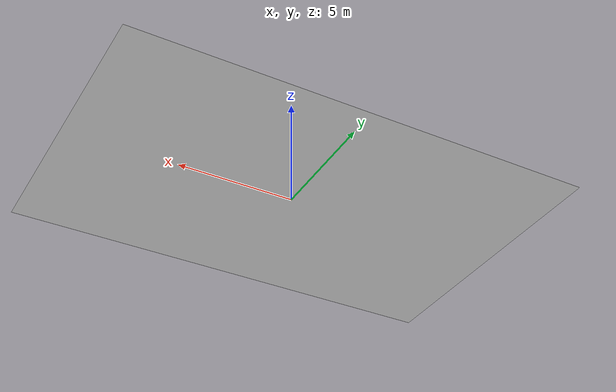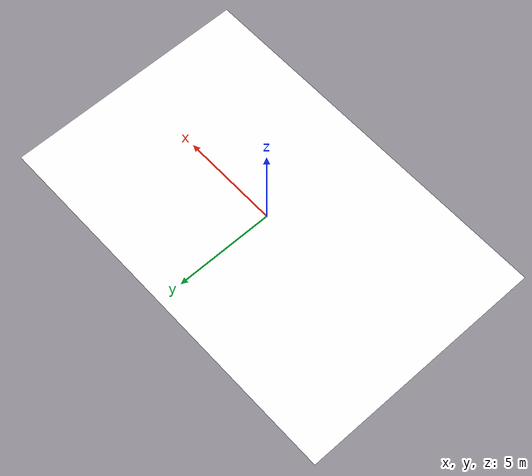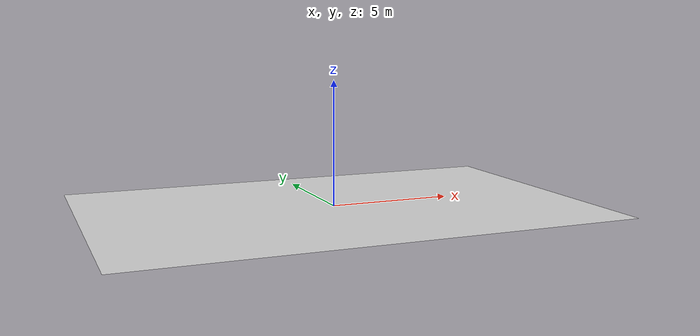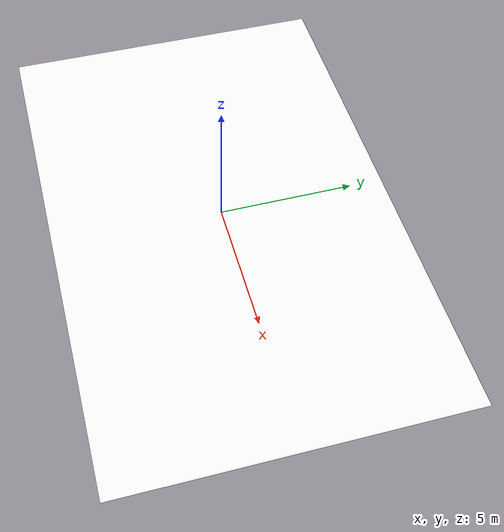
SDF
<?xml version='1.0' encoding='utf-8'?>
<!--
  floor_grid — 19.55 x 12.50 m 카페 바닥.
  2026-05-15: 단일 stretched box → OBJ 메쉬 (UV 1 m 타일) 전환.
              bottom.png 가 1 m 당 한 번 반복되어 stretch 없이 약 20x12 회 타일링.
  충돌은 가벼운 box 그대로 유지.
-->
<sdf version="1.7">
  <model name="floor_grid">
    <static>true</static>
    <link name="floor_link">
      <visual name="floor_visual">
        <geometry>
          <mesh>
            <uri>model://floor_grid/meshes/floor_plane.obj</uri>
          </mesh>
        </geometry>
        <material>
          <ambient>0.95 0.95 0.95 1</ambient>
          <diffuse>0.99 0.99 0.99 1</diffuse>
          <specular>0.05 0.05 0.05 1</specular>
          <pbr>
            <metal>
              <albedo_map>model://floor_grid/textures/bottom.png</albedo_map>
            </metal>
          </pbr>
        </material>
      </visual>
      <collision name="floor_collision">
        <geometry>
          <box>
            <size>19.55 12.50 0.02</size>
          </box>
        </geometry>
      </collision>
    </link>
  </model>
</sdf>
